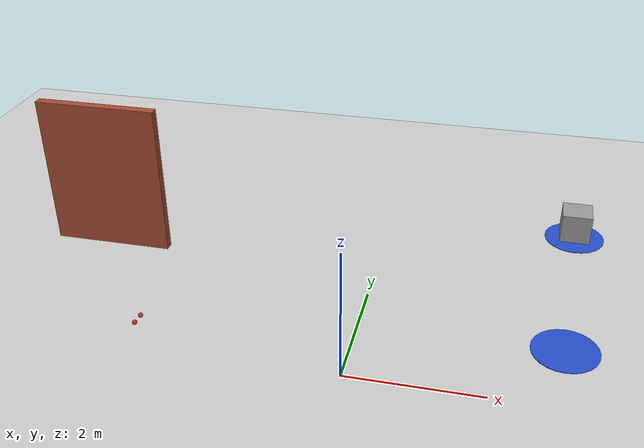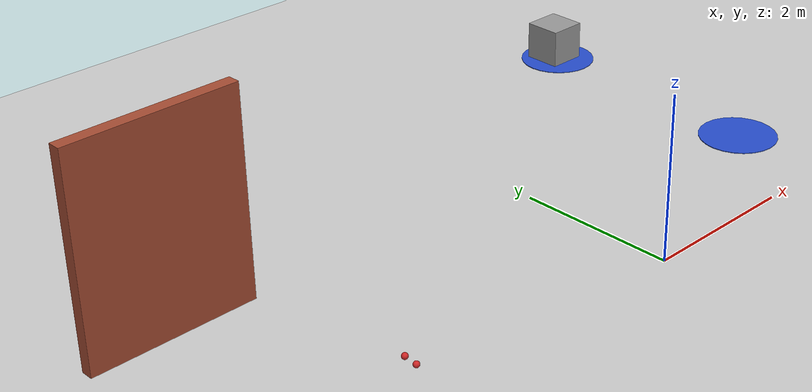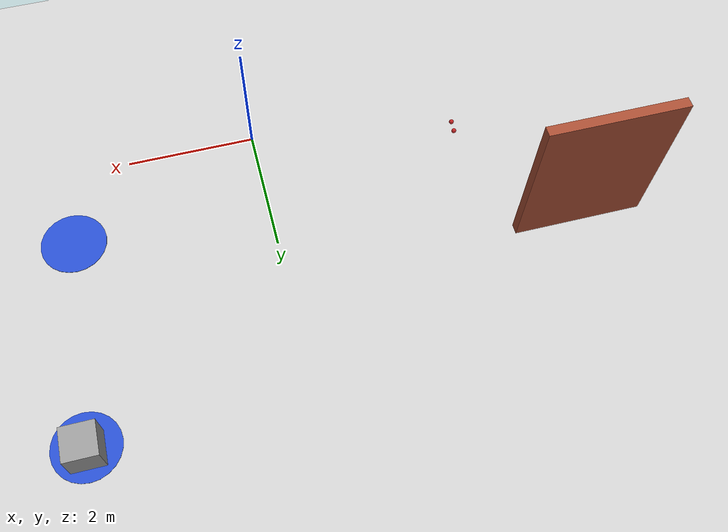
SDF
<sdf version="1.7">
 <world name="default">
  <model name="ground_plane">
   <static>1</static>
   <link name="link">
    <collision name="collision">
     <geometry><plane><normal>0 0 1</normal><size>100 100</size></plane></geometry>
     <surface>
      <contact><collide_bitmask>65535</collide_bitmask></contact>
      <friction><ode><mu>100</mu><mu2>50</mu2></ode></friction>
     </surface>
    </collision>
    <visual name="visual">
     <cast_shadows>0</cast_shadows>
     <geometry><plane><normal>0 0 1</normal><size>100 100</size></plane></geometry>
     <material>
      <script><uri>file://media/materials/scripts/gazebo.material</uri><name>Gazebo/Grey</name></script>
     </material>
    </visual>
   </link>
  </model>
  <model name="cricket_ball">
   <link name="link">
    <pose>0 0 0.0375 0 -0 0</pose>
    <inertial>
     <mass>0.1467</mass>
     <inertia>
      <ixx>8.25187e-05</ixx>
      <ixy>0</ixy>
      <ixz>0</ixz>
      <iyy>8.25187e-05</iyy>
      <iyz>0</iyz>
      <izz>8.25187e-05</izz>
     </inertia>
    </inertial>
    <collision name="collision">
     <geometry><sphere><radius>0.0375</radius></sphere></geometry>
     <surface>
      <contact>
       <poissons_ratio>0.347</poissons_ratio>
       <elastic_modulus>8.8e+09</elastic_modulus>
       <ode><kp>100000</kp><kd>100</kd><max_vel>100</max_vel><min_depth>0.001</min_depth></ode>
      </contact>
      <friction>
       <torsional>
        <coefficient>1</coefficient>
        <use_patch_radius>0</use_patch_radius>
        <surface_radius>0.01</surface_radius>
       </torsional>
      </friction>
     </surface>
    </collision>
    <visual name="visual">
     <geometry><sphere><radius>0.0375</radius></sphere></geometry>
     <material>
      <script><uri>file://media/materials/scripts/gazebo.material</uri><name>Gazebo/Red</name></script>
     </material>
    </visual>
    <velocity_decay><linear>0</linear><angular>0.005</angular></velocity_decay>
   </link>
   <pose>-3.24488 0.467417 -0.001014 0 -0 0</pose>
  </model>
  <model name="cricket_ball_0">
   <link name="link">
    <pose>0 0 0.0375 0 -0 0</pose>
    <inertial>
     <mass>0.1467</mass>
     <inertia>
      <ixx>8.25187e-05</ixx>
      <ixy>0</ixy>
      <ixz>0</ixz>
      <iyy>8.25187e-05</iyy>
      <iyz>0</iyz>
      <izz>8.25187e-05</izz>
     </inertia>
    </inertial>
    <collision name="collision">
     <geometry><sphere><radius>0.0375</radius></sphere></geometry>
     <surface>
      <contact>
       <poissons_ratio>0.347</poissons_ratio>
       <elastic_modulus>8.8e+09</elastic_modulus>
       <ode><kp>100000</kp><kd>100</kd><max_vel>100</max_vel><min_depth>0.001</min_depth></ode>
      </contact>
      <friction>
       <torsional>
        <coefficient>1</coefficient>
        <use_patch_radius>0</use_patch_radius>
        <surface_radius>0.01</surface_radius>
       </torsional>
      </friction>
     </surface>
    </collision>
    <visual name="visual">
     <geometry><sphere><radius>0.0375</radius></sphere></geometry>
     <material>
      <script><uri>file://media/materials/scripts/gazebo.material</uri><name>Gazebo/Red</name></script>
     </material>
    </visual>
    <velocity_decay><linear>0</linear><angular>0.005</angular></velocity_decay>
   </link>
   <pose>-3.22979 0.649662 -0.001014 0 -0 0</pose>
  </model>
  <model name="Green_Circle">
   <link name="link_0">
    <inertial>
     <mass>1</mass>
     <inertia><ixx>0.145833</ixx><ixy>0</ixy><ixz>0</ixz><iyy>0.145833</iyy><iyz>0</iyz><izz>0.125</izz></inertia>
    </inertial>
    <visual name="visual">
     <geometry><cylinder><radius>0.5</radius><length>0.01</length></cylinder></geometry>
     <material>
      <lighting>1</lighting>
      <script><uri>file://media/materials/scripts/gazebo.material</uri><name>Gazebo/Blue</name></script>
      <shader type="pixel"><normal_map>__default__</normal_map></shader>
      <ambient>0.18 0.761 0.494 1</ambient>
      <diffuse>0.18 0.761 0.494 1</diffuse>
      <specular>0.18 0.761 0.494 1</specular>
      <emissive>0 0 0 1</emissive>
     </material>
    </visual>
    <collision name="collision">
     <geometry><cylinder><radius>0.5</radius><length>0.01</length></cylinder></geometry>
     <surface>
      <friction>
       <ode><mu>1</mu><mu2>1</mu2><fdir1>0 0 0</fdir1><slip1>0</slip1><slip2>0</slip2></ode>
       <torsional>
        <coefficient>1</coefficient>
        <patch_radius>0</patch_radius>
        <surface_radius>0</surface_radius>
        <use_patch_radius>1</use_patch_radius>
        <ode><slip>0</slip></ode>
       </torsional>
      </friction>
      <bounce><restitution_coefficient>0</restitution_coefficient><threshold>1e+06</threshold></bounce>
      <contact>
       <collide_without_contact>0</collide_without_contact>
       <collide_without_contact_bitmask>1</collide_without_contact_bitmask>
       <collide_bitmask>1</collide_bitmask>
       <ode>
        <soft_cfm>0</soft_cfm>
        <soft_erp>0.2</soft_erp>
        <kp>1e+13</kp>
        <kd>1</kd>
        <max_vel>0.01</max_vel>
        <min_depth>0</min_depth>
       </ode>
       <bullet>
        <split_impulse>1</split_impulse>
        <split_impulse_penetration_threshold>-0.01</split_impulse_penetration_threshold>
        <soft_cfm>0</soft_cfm>
        <soft_erp>0.2</soft_erp>
        <kp>1e+13</kp>
        <kd>1</kd>
       </bullet>
      </contact>
     </surface>
    </collision>
   </link>
   <static>1</static>
   <pose>3.18631 4.46804 0 0 -0 0</pose>
  </model>
  <model name="Red_Circle">
   <link name="link_0">
    <inertial>
     <mass>1</mass>
     <inertia><ixx>0.145833</ixx><ixy>0</ixy><ixz>0</ixz><iyy>0.145833</iyy><iyz>0</iyz><izz>0.125</izz></inertia>
    </inertial>
    <visual name="visual">
     <geometry><cylinder><radius>0.5</radius><length>0.01</length></cylinder></geometry>
     <material>
      <lighting>1</lighting>
      <script><uri>file://media/materials/scripts/gazebo.material</uri><name>Gazebo/Blue</name></script>
      <shader type="pixel"><normal_map>__default__</normal_map></shader>
      <ambient>0.753 0.11 0.157 1</ambient>
      <diffuse>0.753 0.11 0.157 1</diffuse>
      <specular>0.753 0.11 0.157 1</specular>
      <emissive>0 0 0 1</emissive>
     </material>
    </visual>
    <collision name="collision">
     <geometry><cylinder><radius>0.5</radius><length>0.01</length></cylinder></geometry>
     <surface>
      <friction>
       <ode><mu>1</mu><mu2>1</mu2><fdir1>0 0 0</fdir1><slip1>0</slip1><slip2>0</slip2></ode>
       <torsional>
        <coefficient>1</coefficient>
        <patch_radius>0</patch_radius>
        <surface_radius>0</surface_radius>
        <use_patch_radius>1</use_patch_radius>
        <ode><slip>0</slip></ode>
       </torsional>
      </friction>
      <bounce><restitution_coefficient>0</restitution_coefficient><threshold>1e+06</threshold></bounce>
      <contact>
       <collide_without_contact>0</collide_without_contact>
       <collide_without_contact_bitmask>1</collide_without_contact_bitmask>
       <collide_bitmask>1</collide_bitmask>
       <ode>
        <soft_cfm>0</soft_cfm>
        <soft_erp>0.2</soft_erp>
        <kp>1e+13</kp>
        <kd>1</kd>
        <max_vel>0.01</max_vel>
        <min_depth>0</min_depth>
       </ode>
       <bullet>
        <split_impulse>1</split_impulse>
        <split_impulse_penetration_threshold>-0.01</split_impulse_penetration_threshold>
        <soft_cfm>0</soft_cfm>
        <soft_erp>0.2</soft_erp>
        <kp>1e+13</kp>
        <kd>1</kd>
       </bullet>
      </contact>
     </surface>
    </collision>
   </link>
   <static>1</static>
   <pose>3.01972 1.24629 0 0 -0 0</pose>
  </model>
  <model name="walltest2">
   <pose>-1.19528 5.24996 0 0 -0 0</pose>
   <link name="Wall_7">
    <collision name="Wall_7_Collision">
     <geometry><box><size>2 0.15 2.5</size></box></geometry>
     <pose>0 0 1.25 0 -0 0</pose>
    </collision>
    <visual name="Wall_7_Visual">
     <pose>0 0 1.25 0 -0 0</pose>
     <geometry><box><size>2 0.15 2.5</size></box></geometry>
     <material>
      <script><uri>file://media/materials/scripts/gazebo.material</uri><name>Gazebo/Bricks</name></script>
      <ambient>1 1 1 1</ambient>
     </material>
     <meta><layer>0</layer></meta>
    </visual>
    <pose>-3.38374 -2.6187 0 0 -0 3.14159</pose>
   </link>
   <static>1</static>
  </model>
  <model name="box_final1">
   <link name="link_1">
    <inertial>
     <mass>10</mass>
     <inertia>
      <ixx>0.416667</ixx>
      <ixy>0</ixy>
      <ixz>0</ixz>
      <iyy>0.416667</iyy>
      <iyz>0</iyz>
      <izz>0.416667</izz>
     </inertia>
    </inertial>
    <pose>1e-06 -5e-06 0 0 -0 0</pose>
    <visual name="visual">
     <geometry><box><size>0.5 0.5 0.5</size></box></geometry>
     <material>
      <lighting>1</lighting>
      <script><uri>file://media/materials/scripts/gazebo.material</uri><name>Gazebo/Grey</name></script>
      <shader type="pixel"><normal_map>__default__</normal_map></shader>
      <ambient>0.3 0.3 0.3 1</ambient>
      <diffuse>0.7 0.7 0.7 1</diffuse>
      <specular>0.01 0.01 0.01 1</specular>
      <emissive>0 0 0 1</emissive>
     </material>
    </visual>
    <collision name="collision">
     <geometry><box><size>0.5 0.5 0.5</size></box></geometry>
     <surface>
      <friction>
       <ode><mu>1</mu><mu2>1</mu2><fdir1>0 0 0</fdir1><slip1>0</slip1><slip2>0</slip2></ode>
       <torsional>
        <coefficient>1</coefficient>
        <patch_radius>0</patch_radius>
        <surface_radius>0</surface_radius>
        <use_patch_radius>1</use_patch_radius>
        <ode><slip>0</slip></ode>
       </torsional>
      </friction>
      <bounce><restitution_coefficient>0</restitution_coefficient><threshold>1e+06</threshold></bounce>
      <contact>
       <collide_without_contact>0</collide_without_contact>
       <collide_without_contact_bitmask>1</collide_without_contact_bitmask>
       <collide_bitmask>1</collide_bitmask>
       <ode>
        <soft_cfm>0</soft_cfm>
        <soft_erp>0.2</soft_erp>
        <kp>1e+13</kp>
        <kd>1</kd>
        <max_vel>0.01</max_vel>
        <min_depth>0</min_depth>
       </ode>
       <bullet>
        <split_impulse>1</split_impulse>
        <split_impulse_penetration_threshold>-0.01</split_impulse_penetration_threshold>
        <soft_cfm>0</soft_cfm>
        <soft_erp>0.2</soft_erp>
        <kp>1e+13</kp>
        <kd>1</kd>
       </bullet>
      </contact>
     </surface>
    </collision>
   </link>
   <static>0</static>
   <pose>3.18413 4.53678 0.254994 0 -1.4e-05 0</pose>
  </model>
 </world>
</sdf>
